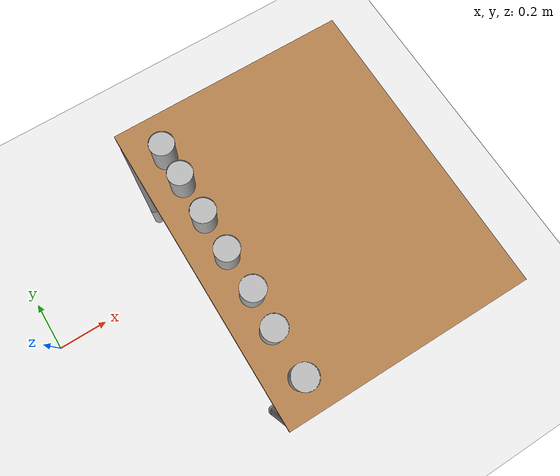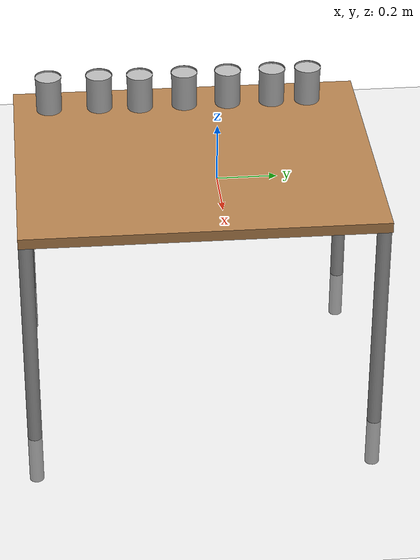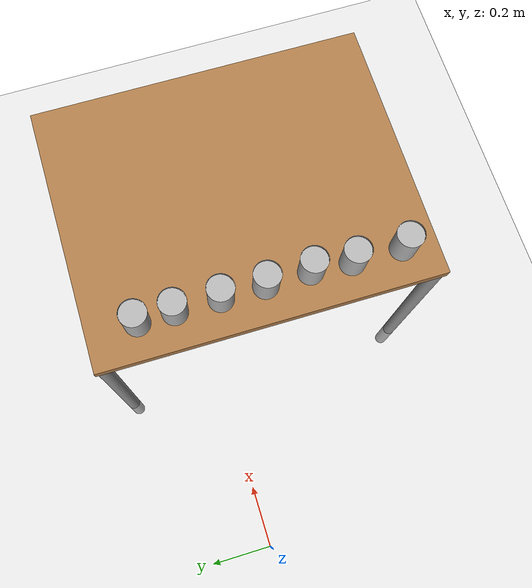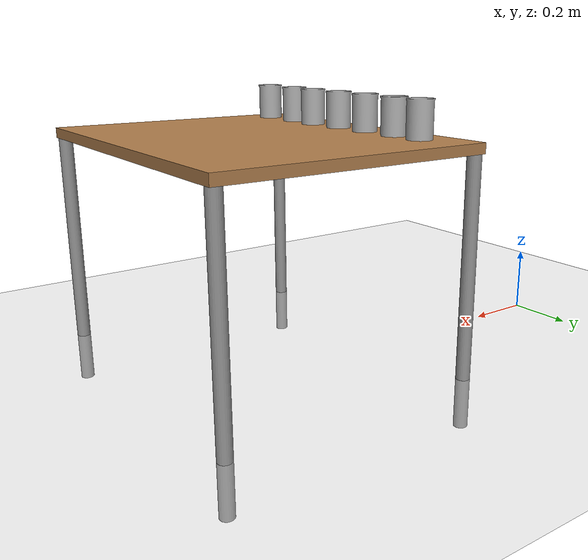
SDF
<sdf version="1.6">
 <world name="default">
  <light name="sun" type="directional">
   <pose>0 0 10 0 -0 0</pose>
   <diffuse>0.8 0.8 0.8 1</diffuse>
   <specular>0.2 0.2 0.2 1</specular>
   <attenuation>
    <range>1000</range>
    <constant>0.9</constant>
    <linear>0.01</linear>
    <quadratic>0.001</quadratic>
   </attenuation>
   <direction>-0.5 0.1 -0.9</direction>
  </light>
  <model name="ground_plane">
   <static>1</static>
   <link name="link">
    <collision name="collision">
     <geometry><plane><normal>0 0 1</normal><size>100 100</size></plane></geometry>
     <surface>
      <contact><collide_bitmask>65535</collide_bitmask></contact>
      <friction><ode><mu>100</mu><mu2>50</mu2></ode></friction>
     </surface>
    </collision>
    <visual name="visual">
     <cast_shadows>0</cast_shadows>
     <geometry><plane><normal>0 0 1</normal><size>100 100</size></plane></geometry>
     <material>
      <script><uri>file://media/materials/scripts/gazebo.material</uri><name>Gazebo/Grey</name></script>
     </material>
    </visual>
   </link>
  </model>
  <gravity>0 0 -9.8</gravity>
  <magnetic_field>6e-06 2.3e-05 -4.2e-05</magnetic_field>
  <atmosphere type="adiabatic"/>
  <physics name="default_physics" default="0" type="ode">
   <max_step_size>0.001</max_step_size>
   <real_time_factor>1</real_time_factor>
   <real_time_update_rate>1000</real_time_update_rate>
  </physics>
  <scene><ambient>0.4 0.4 0.4 1</ambient><background>0.7 0.7 0.7 1</background><shadows>1</shadows></scene>
  <audio><device>default</device></audio>
  <spherical_coordinates>
   <surface_model>EARTH_WGS84</surface_model>
   <latitude_deg>0</latitude_deg>
   <longitude_deg>0</longitude_deg>
   <elevation>0</elevation>
   <heading_deg>0</heading_deg>
  </spherical_coordinates>
  <model name="table">
   <static>1</static>
   <link name="link">
    <collision name="surface">
     <pose>0 0 0.8 0 -0 0</pose>
     <geometry><box><size>1 0.8 0.03</size></box></geometry>
    </collision>
    <visual name="visual1">
     <pose>0 0 0.8 0 -0 0</pose>
     <geometry><box><size>1 0.8 0.03</size></box></geometry>
     <material>
      <script><uri>file://media/materials/scripts/gazebo.material</uri><name>Gazebo/Wood</name></script>
     </material>
    </visual>
    <collision name="front_left_leg">
     <pose>0.48 0.38 0.4 0 -0 0</pose>
     <geometry><cylinder><radius>0.02</radius><length>0.8</length></cylinder></geometry>
    </collision>
    <visual name="front_left_leg">
     <pose>0.48 0.38 0.4 0 -0 0</pose>
     <geometry><cylinder><radius>0.02</radius><length>0.8</length></cylinder></geometry>
     <material>
      <script><uri>file://media/materials/scripts/gazebo.material</uri><name>Gazebo/Grey</name></script>
     </material>
    </visual>
    <collision name="front_right_leg">
     <pose>0.48 -0.38 0.4 0 -0 0</pose>
     <geometry><cylinder><radius>0.02</radius><length>0.8</length></cylinder></geometry>
    </collision>
    <visual name="front_right_leg">
     <pose>0.48 -0.38 0.4 0 -0 0</pose>
     <geometry><cylinder><radius>0.02</radius><length>0.8</length></cylinder></geometry>
     <material>
      <script><uri>file://media/materials/scripts/gazebo.material</uri><name>Gazebo/Grey</name></script>
     </material>
    </visual>
    <collision name="back_right_leg">
     <pose>-0.48 -0.38 0.4 0 -0 0</pose>
     <geometry><cylinder><radius>0.02</radius><length>0.8</length></cylinder></geometry>
    </collision>
    <visual name="back_right_leg">
     <pose>-0.48 -0.38 0.4 0 -0 0</pose>
     <geometry><cylinder><radius>0.02</radius><length>0.8</length></cylinder></geometry>
     <material>
      <script><uri>file://media/materials/scripts/gazebo.material</uri><name>Gazebo/Grey</name></script>
     </material>
    </visual>
    <collision name="back_left_leg">
     <pose>-0.48 0.38 0.4 0 -0 0</pose>
     <geometry><cylinder><radius>0.02</radius><length>0.8</length></cylinder></geometry>
    </collision>
    <visual name="back_left_leg">
     <pose>-0.48 0.38 0.4 0 -0 0</pose>
     <geometry><cylinder><radius>0.02</radius><length>0.8</length></cylinder></geometry>
     <material>
      <script><uri>file://media/materials/scripts/gazebo.material</uri><name>Gazebo/Grey</name></script>
     </material>
    </visual>
    <velocity_decay><linear>0</linear><angular>0</angular></velocity_decay>
   </link>
   <pose>0.979095 -0.163989 -0.149239 0 0 -1.57506</pose>
  </model>
  <model name="standard_can_fit">
   <link name="link_0">
    <inertial>
     <mass>0.4</mass>
     <inertia>
      <ixx>0.000936</ixx>
      <ixy>0</ixy>
      <ixz>0</ixz>
      <iyy>0.000936</iyy>
      <iyz>0</iyz>
      <izz>0.001066</izz>
     </inertia>
    </inertial>
    <visual name="visual">
     <geometry><mesh><uri>model://standard_can_fit/standard_can_fit.dae</uri><scale>1 1 1</scale></mesh></geometry>
    </visual>
    <collision name="collision">
     <geometry><mesh><uri>model://standard_can_fit/standard_can_fit.dae</uri><scale>1 1 1</scale></mesh></geometry>
     <surface>
      <friction>
       <ode><mu>1</mu><mu2>1</mu2><fdir1>0 0 0</fdir1><slip1>0</slip1><slip2>0</slip2></ode>
       <torsional>
        <coefficient>1</coefficient>
        <patch_radius>0</patch_radius>
        <surface_radius>0</surface_radius>
        <use_patch_radius>1</use_patch_radius>
        <ode><slip>0</slip></ode>
       </torsional>
      </friction>
      <bounce><restitution_coefficient>0</restitution_coefficient><threshold>1e+06</threshold></bounce>
      <contact>
       <collide_without_contact>0</collide_without_contact>
       <collide_without_contact_bitmask>1</collide_without_contact_bitmask>
       <collide_bitmask>1</collide_bitmask>
       <ode>
        <soft_cfm>0</soft_cfm>
        <soft_erp>0.2</soft_erp>
        <kp>1e+13</kp>
        <kd>1</kd>
        <max_vel>0.01</max_vel>
        <min_depth>0.01</min_depth>
       </ode>
       <bullet>
        <split_impulse>1</split_impulse>
        <split_impulse_penetration_threshold>-0.01</split_impulse_penetration_threshold>
        <soft_cfm>0</soft_cfm>
        <soft_erp>0.2</soft_erp>
        <kp>1e+13</kp>
        <kd>1</kd>
       </bullet>
      </contact>
     </surface>
    </collision>
   </link>
   <static>0</static>
   <pose>0.68203 0.192669 0.719693 0.001603 -0.001097 -0.003747</pose>
  </model>
  <model name="standard_can_fit_clone">
   <link name="link_0">
    <inertial>
     <mass>0.4</mass>
     <inertia>
      <ixx>0.000936</ixx>
      <ixy>0</ixy>
      <ixz>0</ixz>
      <iyy>0.000936</iyy>
      <iyz>0</iyz>
      <izz>0.001066</izz>
     </inertia>
    </inertial>
    <visual name="visual">
     <geometry><mesh><uri>model://standard_can_fit/standard_can_fit.dae</uri><scale>1 1 1</scale></mesh></geometry>
    </visual>
    <collision name="collision">
     <geometry><mesh><uri>model://standard_can_fit/standard_can_fit.dae</uri><scale>1 1 1</scale></mesh></geometry>
     <surface>
      <friction>
       <ode><mu>1</mu><mu2>1</mu2><fdir1>0 0 0</fdir1><slip1>0</slip1><slip2>0</slip2></ode>
       <torsional>
        <coefficient>1</coefficient>
        <patch_radius>0</patch_radius>
        <surface_radius>0</surface_radius>
        <use_patch_radius>1</use_patch_radius>
        <ode><slip>0</slip></ode>
       </torsional>
      </friction>
      <bounce><restitution_coefficient>0</restitution_coefficient><threshold>1e+06</threshold></bounce>
      <contact>
       <collide_without_contact>0</collide_without_contact>
       <collide_without_contact_bitmask>1</collide_without_contact_bitmask>
       <collide_bitmask>1</collide_bitmask>
       <ode>
        <soft_cfm>0</soft_cfm>
        <soft_erp>0.2</soft_erp>
        <kp>1e+13</kp>
        <kd>1</kd>
        <max_vel>0.01</max_vel>
        <min_depth>0.01</min_depth>
       </ode>
       <bullet>
        <split_impulse>1</split_impulse>
        <split_impulse_penetration_threshold>-0.01</split_impulse_penetration_threshold>
        <soft_cfm>0</soft_cfm>
        <soft_erp>0.2</soft_erp>
        <kp>1e+13</kp>
        <kd>1</kd>
       </bullet>
      </contact>
     </surface>
    </collision>
   </link>
   <static>0</static>
   <pose>0.68251 0.088324 0.719668 0.001562 -0.001435 -0.00363</pose>
  </model>
  <model name="standard_can_fit_clone_0">
   <link name="link_0">
    <inertial>
     <mass>0.4</mass>
     <inertia>
      <ixx>0.000936</ixx>
      <ixy>0</ixy>
      <ixz>0</ixz>
      <iyy>0.000936</iyy>
      <iyz>0</iyz>
      <izz>0.001066</izz>
     </inertia>
    </inertial>
    <visual name="visual">
     <geometry><mesh><uri>model://standard_can_fit/standard_can_fit.dae</uri><scale>1 1 1</scale></mesh></geometry>
    </visual>
    <collision name="collision">
     <geometry><mesh><uri>model://standard_can_fit/standard_can_fit.dae</uri><scale>1 1 1</scale></mesh></geometry>
     <surface>
      <friction>
       <ode><mu>1</mu><mu2>1</mu2><fdir1>0 0 0</fdir1><slip1>0</slip1><slip2>0</slip2></ode>
       <torsional>
        <coefficient>1</coefficient>
        <patch_radius>0</patch_radius>
        <surface_radius>0</surface_radius>
        <use_patch_radius>1</use_patch_radius>
        <ode><slip>0</slip></ode>
       </torsional>
      </friction>
      <bounce><restitution_coefficient>0</restitution_coefficient><threshold>1e+06</threshold></bounce>
      <contact>
       <collide_without_contact>0</collide_without_contact>
       <collide_without_contact_bitmask>1</collide_without_contact_bitmask>
       <collide_bitmask>1</collide_bitmask>
       <ode>
        <soft_cfm>0</soft_cfm>
        <soft_erp>0.2</soft_erp>
        <kp>1e+13</kp>
        <kd>1</kd>
        <max_vel>0.01</max_vel>
        <min_depth>0.01</min_depth>
       </ode>
       <bullet>
        <split_impulse>1</split_impulse>
        <split_impulse_penetration_threshold>-0.01</split_impulse_penetration_threshold>
        <soft_cfm>0</soft_cfm>
        <soft_erp>0.2</soft_erp>
        <kp>1e+13</kp>
        <kd>1</kd>
       </bullet>
      </contact>
     </surface>
    </collision>
   </link>
   <static>0</static>
   <pose>0.682037 -0.040222 0.719652 0.001519 -0.001394 -0.00363</pose>
  </model>
  <model name="standard_can_fit_clone_1">
   <link name="link_0">
    <inertial>
     <mass>0.4</mass>
     <inertia>
      <ixx>0.000936</ixx>
      <ixy>0</ixy>
      <ixz>0</ixz>
      <iyy>0.000936</iyy>
      <iyz>0</iyz>
      <izz>0.001066</izz>
     </inertia>
    </inertial>
    <visual name="visual">
     <geometry><mesh><uri>model://standard_can_fit/standard_can_fit.dae</uri><scale>1 1 1</scale></mesh></geometry>
    </visual>
    <collision name="collision">
     <geometry><mesh><uri>model://standard_can_fit/standard_can_fit.dae</uri><scale>1 1 1</scale></mesh></geometry>
     <surface>
      <friction>
       <ode><mu>1</mu><mu2>1</mu2><fdir1>0 0 0</fdir1><slip1>0</slip1><slip2>0</slip2></ode>
       <torsional>
        <coefficient>1</coefficient>
        <patch_radius>0</patch_radius>
        <surface_radius>0</surface_radius>
        <use_patch_radius>1</use_patch_radius>
        <ode><slip>0</slip></ode>
       </torsional>
      </friction>
      <bounce><restitution_coefficient>0</restitution_coefficient><threshold>1e+06</threshold></bounce>
      <contact>
       <collide_without_contact>0</collide_without_contact>
       <collide_without_contact_bitmask>1</collide_without_contact_bitmask>
       <collide_bitmask>1</collide_bitmask>
       <ode>
        <soft_cfm>0</soft_cfm>
        <soft_erp>0.2</soft_erp>
        <kp>1e+13</kp>
        <kd>1</kd>
        <max_vel>0.01</max_vel>
        <min_depth>0.01</min_depth>
       </ode>
       <bullet>
        <split_impulse>1</split_impulse>
        <split_impulse_penetration_threshold>-0.01</split_impulse_penetration_threshold>
        <soft_cfm>0</soft_cfm>
        <soft_erp>0.2</soft_erp>
        <kp>1e+13</kp>
        <kd>1</kd>
       </bullet>
      </contact>
     </surface>
    </collision>
   </link>
   <static>0</static>
   <pose>0.682364 -0.166659 0.719641 0.001468 -0.001412 -0.00363</pose>
  </model>
  <model name="standard_can_fit_clone_2">
   <link name="link_0">
    <inertial>
     <mass>0.4</mass>
     <inertia>
      <ixx>0.000936</ixx>
      <ixy>0</ixy>
      <ixz>0</ixz>
      <iyy>0.000936</iyy>
      <iyz>0</iyz>
      <izz>0.001066</izz>
     </inertia>
    </inertial>
    <visual name="visual">
     <geometry><mesh><uri>model://standard_can_fit/standard_can_fit.dae</uri><scale>1 1 1</scale></mesh></geometry>
    </visual>
    <collision name="collision">
     <geometry><mesh><uri>model://standard_can_fit/standard_can_fit.dae</uri><scale>1 1 1</scale></mesh></geometry>
     <surface>
      <friction>
       <ode><mu>1</mu><mu2>1</mu2><fdir1>0 0 0</fdir1><slip1>0</slip1><slip2>0</slip2></ode>
       <torsional>
        <coefficient>1</coefficient>
        <patch_radius>0</patch_radius>
        <surface_radius>0</surface_radius>
        <use_patch_radius>1</use_patch_radius>
        <ode><slip>0</slip></ode>
       </torsional>
      </friction>
      <bounce><restitution_coefficient>0</restitution_coefficient><threshold>1e+06</threshold></bounce>
      <contact>
       <collide_without_contact>0</collide_without_contact>
       <collide_without_contact_bitmask>1</collide_without_contact_bitmask>
       <collide_bitmask>1</collide_bitmask>
       <ode>
        <soft_cfm>0</soft_cfm>
        <soft_erp>0.2</soft_erp>
        <kp>1e+13</kp>
        <kd>1</kd>
        <max_vel>0.01</max_vel>
        <min_depth>0.01</min_depth>
       </ode>
       <bullet>
        <split_impulse>1</split_impulse>
        <split_impulse_penetration_threshold>-0.01</split_impulse_penetration_threshold>
        <soft_cfm>0</soft_cfm>
        <soft_erp>0.2</soft_erp>
        <kp>1e+13</kp>
        <kd>1</kd>
       </bullet>
      </contact>
     </surface>
    </collision>
   </link>
   <static>0</static>
   <pose>0.685643 -0.295977 0.719642 0.001476 -0.001415 -0.00363</pose>
  </model>
  <model name="standard_can_fit_clone_3">
   <link name="link_0">
    <inertial>
     <mass>0.4</mass>
     <inertia>
      <ixx>0.000936</ixx>
      <ixy>0</ixy>
      <ixz>0</ixz>
      <iyy>0.000936</iyy>
      <iyz>0</iyz>
      <izz>0.001066</izz>
     </inertia>
    </inertial>
    <visual name="visual">
     <geometry><mesh><uri>model://standard_can_fit/standard_can_fit.dae</uri><scale>1 1 1</scale></mesh></geometry>
    </visual>
    <collision name="collision">
     <geometry><mesh><uri>model://standard_can_fit/standard_can_fit.dae</uri><scale>1 1 1</scale></mesh></geometry>
     <surface>
      <friction>
       <ode><mu>1</mu><mu2>1</mu2><fdir1>0 0 0</fdir1><slip1>0</slip1><slip2>0</slip2></ode>
       <torsional>
        <coefficient>1</coefficient>
        <patch_radius>0</patch_radius>
        <surface_radius>0</surface_radius>
        <use_patch_radius>1</use_patch_radius>
        <ode><slip>0</slip></ode>
       </torsional>
      </friction>
      <bounce><restitution_coefficient>0</restitution_coefficient><threshold>1e+06</threshold></bounce>
      <contact>
       <collide_without_contact>0</collide_without_contact>
       <collide_without_contact_bitmask>1</collide_without_contact_bitmask>
       <collide_bitmask>1</collide_bitmask>
       <ode>
        <soft_cfm>0</soft_cfm>
        <soft_erp>0.2</soft_erp>
        <kp>1e+13</kp>
        <kd>1</kd>
        <max_vel>0.01</max_vel>
        <min_depth>0.01</min_depth>
       </ode>
       <bullet>
        <split_impulse>1</split_impulse>
        <split_impulse_penetration_threshold>-0.01</split_impulse_penetration_threshold>
        <soft_cfm>0</soft_cfm>
        <soft_erp>0.2</soft_erp>
        <kp>1e+13</kp>
        <kd>1</kd>
       </bullet>
      </contact>
     </surface>
    </collision>
   </link>
   <static>0</static>
   <pose>0.678513 -0.413288 0.719638 0.001486 -0.001403 -0.00363</pose>
  </model>
  <model name="standard_can_fit_clone_4">
   <link name="link_0">
    <inertial>
     <mass>0.4</mass>
     <inertia>
      <ixx>0.000936</ixx>
      <ixy>0</ixy>
      <ixz>0</ixz>
      <iyy>0.000936</iyy>
      <iyz>0</iyz>
      <izz>0.001066</izz>
     </inertia>
    </inertial>
    <visual name="visual">
     <geometry><mesh><uri>model://standard_can_fit/standard_can_fit.dae</uri><scale>1 1 1</scale></mesh></geometry>
    </visual>
    <collision name="collision">
     <geometry><mesh><uri>model://standard_can_fit/standard_can_fit.dae</uri><scale>1 1 1</scale></mesh></geometry>
     <surface>
      <friction>
       <ode><mu>1</mu><mu2>1</mu2><fdir1>0 0 0</fdir1><slip1>0</slip1><slip2>0</slip2></ode>
       <torsional>
        <coefficient>1</coefficient>
        <patch_radius>0</patch_radius>
        <surface_radius>0</surface_radius>
        <use_patch_radius>1</use_patch_radius>
        <ode><slip>0</slip></ode>
       </torsional>
      </friction>
      <bounce><restitution_coefficient>0</restitution_coefficient><threshold>1e+06</threshold></bounce>
      <contact>
       <collide_without_contact>0</collide_without_contact>
       <collide_without_contact_bitmask>1</collide_without_contact_bitmask>
       <collide_bitmask>1</collide_bitmask>
       <ode>
        <soft_cfm>0</soft_cfm>
        <soft_erp>0.2</soft_erp>
        <kp>1e+13</kp>
        <kd>1</kd>
        <max_vel>0.01</max_vel>
        <min_depth>0.01</min_depth>
       </ode>
       <bullet>
        <split_impulse>1</split_impulse>
        <split_impulse_penetration_threshold>-0.01</split_impulse_penetration_threshold>
        <soft_cfm>0</soft_cfm>
        <soft_erp>0.2</soft_erp>
        <kp>1e+13</kp>
        <kd>1</kd>
       </bullet>
      </contact>
     </surface>
    </collision>
   </link>
   <static>0</static>
   <pose>0.678927 -0.559485 0.719634 0.001511 -0.001387 -0.00363</pose>
  </model>
 </world>
</sdf>
